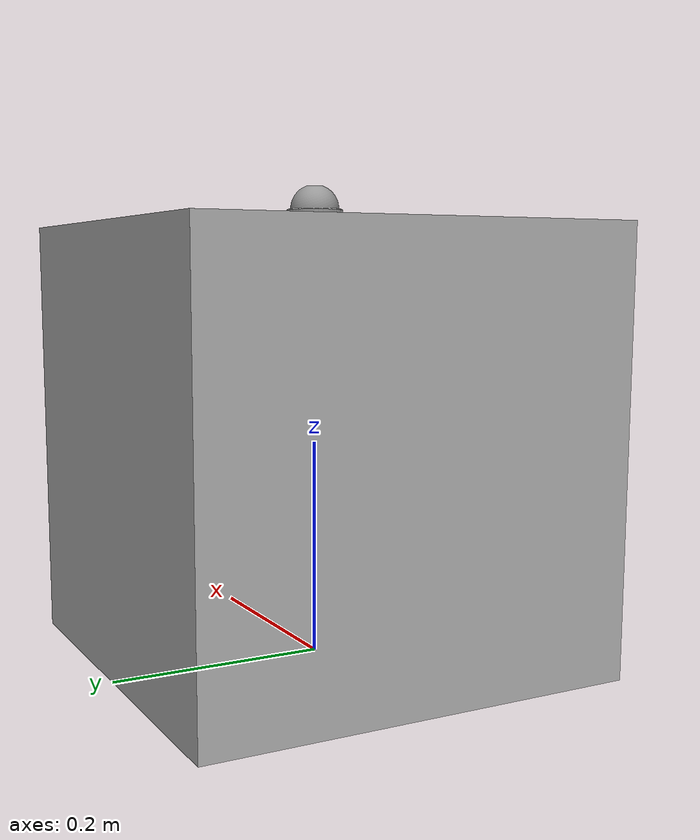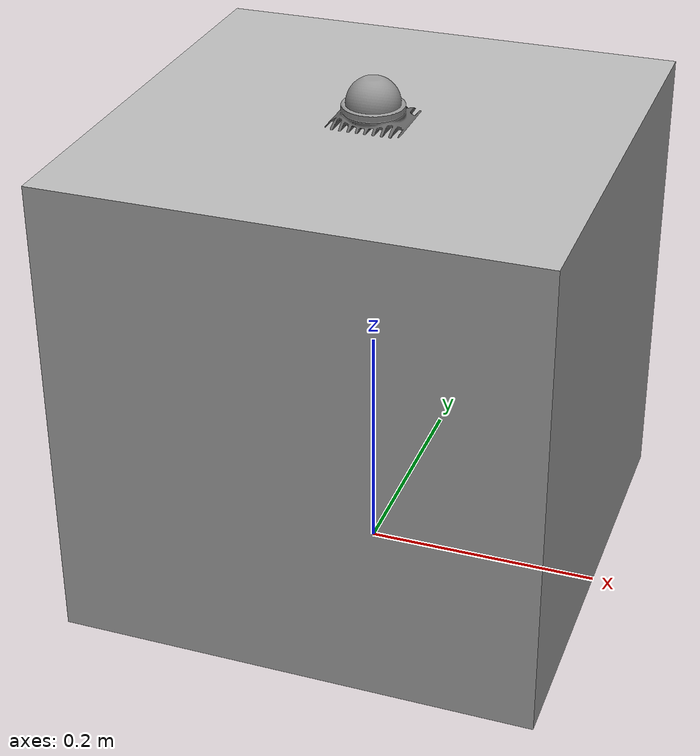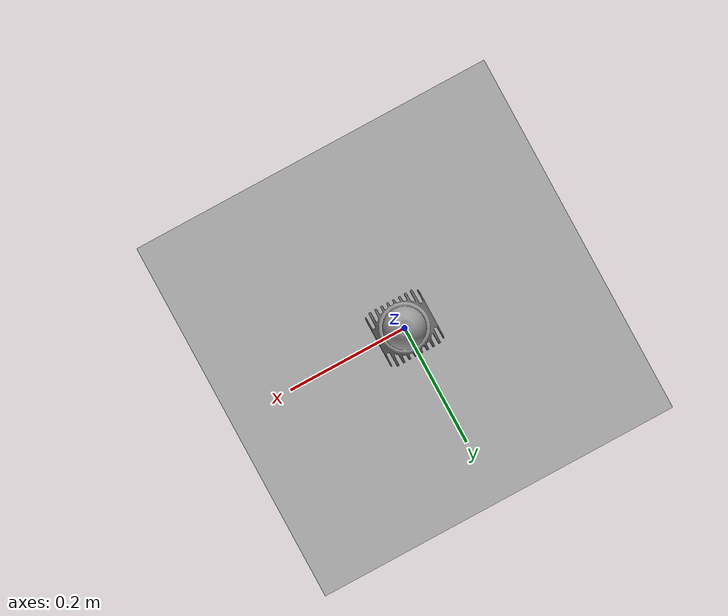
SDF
<?xml version="1.0" ?>
<!-- |    This document was autogenerated by xmacro from model.sdf.xmacro              | -->
<!-- |    EDITING THIS FILE BY HAND IS NOT RECOMMENDED                                 | -->
<sdf version="1.7">
	<!--xmacro_define_block: livox-->
	<!--Livox mid360-->
	<model name="simple_livox">
		<pose>0 0 0.2 0 0 0</pose>
		<link name="base_link">
			<inertial>
				<mass>0.4</mass>
				<inertia>
					<ixx>0.01066666666666667</ixx>
					<ixy>0</ixy>
					<ixz>0</ixz>
					<iyy>0.01066666666666667</iyy>
					<iyz>0</iyz>
					<izz>0.01066666666666667</izz>
				</inertia>
			</inertial>
			<visual name="visual">
				<geometry>
					<box>
						<size>0.4 0.4 0.4</size>
					</box>
				</geometry>
			</visual>
			<collision name="collision">
				<geometry>
					<box>
						<size>0.4 0.4 0.4</size>
					</box>
				</geometry>
			</collision>
		</link>
		<!--update_rate(10-15),samples(400)-->
		<joint name="simple_livox_joint" type="fixed">
			<pose relative_to="base_link">0 0 0.2 0 0 0</pose>
			<parent>base_link</parent>
			<child>simple_mid360</child>
		</joint>
		<link name="simple_mid360">
			<pose relative_to="simple_livox_joint">0.0 0.0 0.0 0 0 0</pose>
			<inertial>
				<pose>0 0 0.02 0 0 0</pose>
				<mass>0.005</mass>
				<inertia>
					<ixx>2.6666666666666664e-06</ixx>
					<ixy>0</ixy>
					<ixz>0</ixz>
					<iyy>2.6666666666666664e-06</iyy>
					<iyz>0</iyz>
					<izz>4.000000000000001e-06</izz>
				</inertia>
			</inertial>
			<visual name="visual">
				<pose>0.0 0.0 0.0 0 0 3.141592653589793</pose>
				<geometry>
					<mesh>
						<uri>model://mid360/meshes/mid360.dae</uri>
					</mesh>
				</geometry>
			</visual>
			<sensor name="simple_mid360_imu" type="imu">
				<ignition_frame_id>simple_mid360</ignition_frame_id>
				<always_on>1</always_on>
				<update_rate>200</update_rate>
				<visualize>true</visualize>
			</sensor>
			<sensor name="simple_mid360_lidar" type="gpu_lidar">
				<ignition_frame_id>simple_mid360</ignition_frame_id>
				<pose>0 0 0.03 0 0 0</pose>
				<always_on>true</always_on>
				<visualize>true</visualize>
				<update_rate>10.0</update_rate>
				<ray>
					<scan>
						<horizontal>
							<samples>1500.0</samples>
							<resolution>1.0</resolution>
							<min_angle>0</min_angle>
							<max_angle>6.2831852</max_angle>
						</horizontal>
						<vertical>
							<samples>32</samples>
							<min_angle>-0.12217304764</min_angle>
							<max_angle>0.90757121104</max_angle>
						</vertical>
					</scan>
					<range>
						<min>0.15</min>
						<max>15.0</max>
					</range>
				</ray>
				<noise>
					<type>gaussian</type>
					<mean>0.0</mean>
					<stddev>0.01</stddev>
				</noise>
			</sensor>
		</link>
	</model>
</sdf>
